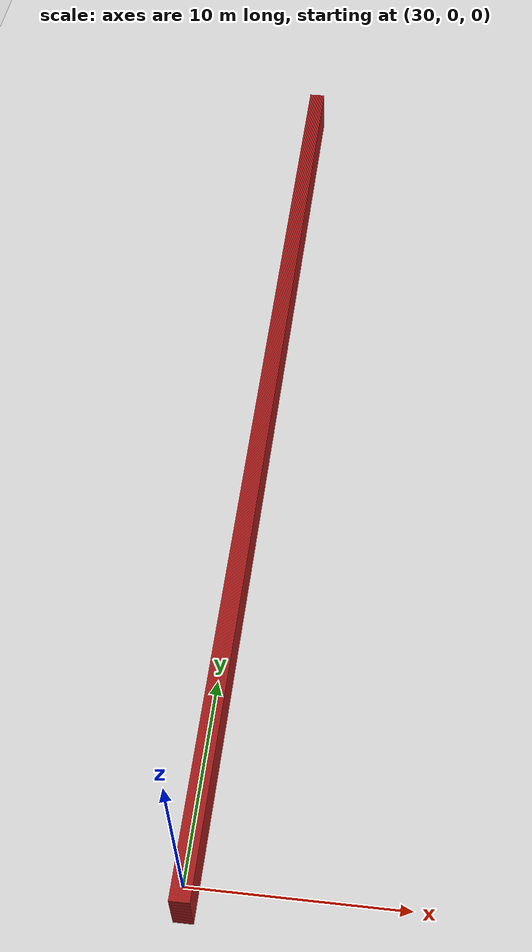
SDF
<sdf version="1.4">
 <world name="1_wall">
  <model name="ground_plane">
   <static>1</static>
   <link name="link">
    <collision name="collision">
     <geometry><plane><normal>0 0 1</normal><size>1000 1000</size></plane></geometry>
     <surface><friction><ode><mu>100</mu><mu2>50</mu2></ode></friction></surface>
    </collision>
    <visual name="visual">
     <cast_shadows>0</cast_shadows>
     <geometry><plane><normal>0 0 1</normal><size>10000 10000</size></plane></geometry>
     <material>
      <script><uri>file://media/materials/scripts/gazebo.material</uri><name>Gazebo/Grey</name></script>
     </material>
    </visual>
    <velocity_decay><linear>0</linear><angular>0</angular></velocity_decay>
   </link>
  </model>
  <model name="Wall_627">
   <static>1</static>
   <link name="Wall_627">
    <collision name="Wall_Collision_627">
     <geometry><box><size>53.65 0.05 2.5</size></box></geometry>
     <pose>0 0 1.25 0 -0 0</pose>
    </collision>
    <visual name="Wall_Visual_627">
     <pose>0 0 1.25 0 -0 0</pose>
     <geometry><box><size>53.65 0.05 2.5</size></box></geometry>
     <material>
      <script><uri>file://media/materials/scripts/gazebo.material</uri><name>Gazebo/Red</name></script>
     </material>
    </visual>
    <velocity_decay><linear>0</linear><angular>0</angular></velocity_decay>
    <pose>29.85 25.3 0 0 0 1.5707963267948966</pose>
   </link>
  </model>
  <model name="Wall_628">
   <static>1</static>
   <link name="Wall_628">
    <collision name="Wall_Collision_628">
     <geometry><box><size>53.65 0.05 2.5</size></box></geometry>
     <pose>0 0 1.25 0 -0 0</pose>
    </collision>
    <visual name="Wall_Visual_628">
     <pose>0 0 1.25 0 -0 0</pose>
     <geometry><box><size>53.65 0.05 2.5</size></box></geometry>
     <material>
      <script><uri>file://media/materials/scripts/gazebo.material</uri><name>Gazebo/Red</name></script>
     </material>
    </visual>
    <velocity_decay><linear>0</linear><angular>0</angular></velocity_decay>
    <pose>29.9 25.3 0 0 0 1.5707963267948966</pose>
   </link>
  </model>
  <model name="Wall_629">
   <static>1</static>
   <link name="Wall_629">
    <collision name="Wall_Collision_629">
     <geometry><box><size>53.65 0.05 2.5</size></box></geometry>
     <pose>0 0 1.25 0 -0 0</pose>
    </collision>
    <visual name="Wall_Visual_629">
     <pose>0 0 1.25 0 -0 0</pose>
     <geometry><box><size>53.65 0.05 2.5</size></box></geometry>
     <material>
      <script><uri>file://media/materials/scripts/gazebo.material</uri><name>Gazebo/Red</name></script>
     </material>
    </visual>
    <velocity_decay><linear>0</linear><angular>0</angular></velocity_decay>
    <pose>29.95 25.3 0 0 0 1.5707963267948966</pose>
   </link>
  </model>
  <model name="Wall_630">
   <static>1</static>
   <link name="Wall_630">
    <collision name="Wall_Collision_630">
     <geometry><box><size>53.65 0.05 2.5</size></box></geometry>
     <pose>0 0 1.25 0 -0 0</pose>
    </collision>
    <visual name="Wall_Visual_630">
     <pose>0 0 1.25 0 -0 0</pose>
     <geometry><box><size>53.65 0.05 2.5</size></box></geometry>
     <material>
      <script><uri>file://media/materials/scripts/gazebo.material</uri><name>Gazebo/Red</name></script>
     </material>
    </visual>
    <velocity_decay><linear>0</linear><angular>0</angular></velocity_decay>
    <pose>30.0 25.3 0 0 0 1.5707963267948966</pose>
   </link>
  </model>
  <model name="Wall_631">
   <static>1</static>
   <link name="Wall_631">
    <collision name="Wall_Collision_631">
     <geometry><box><size>53.65 0.05 2.5</size></box></geometry>
     <pose>0 0 1.25 0 -0 0</pose>
    </collision>
    <visual name="Wall_Visual_631">
     <pose>0 0 1.25 0 -0 0</pose>
     <geometry><box><size>53.65 0.05 2.5</size></box></geometry>
     <material>
      <script><uri>file://media/materials/scripts/gazebo.material</uri><name>Gazebo/Red</name></script>
     </material>
    </visual>
    <velocity_decay><linear>0</linear><angular>0</angular></velocity_decay>
    <pose>30.05 25.3 0 0 0 1.5707963267948966</pose>
   </link>
  </model>
  <model name="Wall_632">
   <static>1</static>
   <link name="Wall_632">
    <collision name="Wall_Collision_632">
     <geometry><box><size>53.65 0.05 2.5</size></box></geometry>
     <pose>0 0 1.25 0 -0 0</pose>
    </collision>
    <visual name="Wall_Visual_632">
     <pose>0 0 1.25 0 -0 0</pose>
     <geometry><box><size>53.65 0.05 2.5</size></box></geometry>
     <material>
      <script><uri>file://media/materials/scripts/gazebo.material</uri><name>Gazebo/Red</name></script>
     </material>
    </visual>
    <velocity_decay><linear>0</linear><angular>0</angular></velocity_decay>
    <pose>30.1 25.3 0 0 0 1.5707963267948966</pose>
   </link>
  </model>
  <model name="Wall_633">
   <static>1</static>
   <link name="Wall_633">
    <collision name="Wall_Collision_633">
     <geometry><box><size>53.65 0.05 2.5</size></box></geometry>
     <pose>0 0 1.25 0 -0 0</pose>
    </collision>
    <visual name="Wall_Visual_633">
     <pose>0 0 1.25 0 -0 0</pose>
     <geometry><box><size>53.65 0.05 2.5</size></box></geometry>
     <material>
      <script><uri>file://media/materials/scripts/gazebo.material</uri><name>Gazebo/Red</name></script>
     </material>
    </visual>
    <velocity_decay><linear>0</linear><angular>0</angular></velocity_decay>
    <pose>30.15 25.3 0 0 0 1.5707963267948966</pose>
   </link>
  </model>
  <model name="Wall_634">
   <static>1</static>
   <link name="Wall_634">
    <collision name="Wall_Collision_634">
     <geometry><box><size>53.65 0.05 2.5</size></box></geometry>
     <pose>0 0 1.25 0 -0 0</pose>
    </collision>
    <visual name="Wall_Visual_634">
     <pose>0 0 1.25 0 -0 0</pose>
     <geometry><box><size>53.65 0.05 2.5</size></box></geometry>
     <material>
      <script><uri>file://media/materials/scripts/gazebo.material</uri><name>Gazebo/Red</name></script>
     </material>
    </visual>
    <velocity_decay><linear>0</linear><angular>0</angular></velocity_decay>
    <pose>30.2 25.3 0 0 0 1.5707963267948966</pose>
   </link>
  </model>
  <model name="Wall_635">
   <static>1</static>
   <link name="Wall_635">
    <collision name="Wall_Collision_635">
     <geometry><box><size>53.65 0.05 2.5</size></box></geometry>
     <pose>0 0 1.25 0 -0 0</pose>
    </collision>
    <visual name="Wall_Visual_635">
     <pose>0 0 1.25 0 -0 0</pose>
     <geometry><box><size>53.65 0.05 2.5</size></box></geometry>
     <material>
      <script><uri>file://media/materials/scripts/gazebo.material</uri><name>Gazebo/Red</name></script>
     </material>
    </visual>
    <velocity_decay><linear>0</linear><angular>0</angular></velocity_decay>
    <pose>30.25 25.3 0 0 0 1.5707963267948966</pose>
   </link>
  </model>
  <model name="Wall_636">
   <static>1</static>
   <link name="Wall_636">
    <collision name="Wall_Collision_636">
     <geometry><box><size>53.65 0.05 2.5</size></box></geometry>
     <pose>0 0 1.25 0 -0 0</pose>
    </collision>
    <visual name="Wall_Visual_636">
     <pose>0 0 1.25 0 -0 0</pose>
     <geometry><box><size>53.65 0.05 2.5</size></box></geometry>
     <material>
      <script><uri>file://media/materials/scripts/gazebo.material</uri><name>Gazebo/Red</name></script>
     </material>
    </visual>
    <velocity_decay><linear>0</linear><angular>0</angular></velocity_decay>
    <pose>30.3 25.3 0 0 0 1.5707963267948966</pose>
   </link>
  </model>
  <model name="Wall_637">
   <static>1</static>
   <link name="Wall_637">
    <collision name="Wall_Collision_637">
     <geometry><box><size>53.65 0.05 2.5</size></box></geometry>
     <pose>0 0 1.25 0 -0 0</pose>
    </collision>
    <visual name="Wall_Visual_637">
     <pose>0 0 1.25 0 -0 0</pose>
     <geometry><box><size>53.65 0.05 2.5</size></box></geometry>
     <material>
      <script><uri>file://media/materials/scripts/gazebo.material</uri><name>Gazebo/Red</name></script>
     </material>
    </visual>
    <velocity_decay><linear>0</linear><angular>0</angular></velocity_decay>
    <pose>30.35 25.3 0 0 0 1.5707963267948966</pose>
   </link>
  </model>
  <model name="Wall_638">
   <static>1</static>
   <link name="Wall_638">
    <collision name="Wall_Collision_638">
     <geometry><box><size>53.65 0.05 2.5</size></box></geometry>
     <pose>0 0 1.25 0 -0 0</pose>
    </collision>
    <visual name="Wall_Visual_638">
     <pose>0 0 1.25 0 -0 0</pose>
     <geometry><box><size>53.65 0.05 2.5</size></box></geometry>
     <material>
      <script><uri>file://media/materials/scripts/gazebo.material</uri><name>Gazebo/Red</name></script>
     </material>
    </visual>
    <velocity_decay><linear>0</linear><angular>0</angular></velocity_decay>
    <pose>30.4 25.3 0 0 0 1.5707963267948966</pose>
   </link>
  </model>
  <model name="Wall_639">
   <static>1</static>
   <link name="Wall_639">
    <collision name="Wall_Collision_639">
     <geometry><box><size>53.65 0.05 2.5</size></box></geometry>
     <pose>0 0 1.25 0 -0 0</pose>
    </collision>
    <visual name="Wall_Visual_639">
     <pose>0 0 1.25 0 -0 0</pose>
     <geometry><box><size>53.65 0.05 2.5</size></box></geometry>
     <material>
      <script><uri>file://media/materials/scripts/gazebo.material</uri><name>Gazebo/Red</name></script>
     </material>
    </visual>
    <velocity_decay><linear>0</linear><angular>0</angular></velocity_decay>
    <pose>30.45 25.3 0 0 0 1.5707963267948966</pose>
   </link>
  </model>
  <model name="Wall_640">
   <static>1</static>
   <link name="Wall_640">
    <collision name="Wall_Collision_640">
     <geometry><box><size>53.65 0.05 2.5</size></box></geometry>
     <pose>0 0 1.25 0 -0 0</pose>
    </collision>
    <visual name="Wall_Visual_640">
     <pose>0 0 1.25 0 -0 0</pose>
     <geometry><box><size>53.65 0.05 2.5</size></box></geometry>
     <material>
      <script><uri>file://media/materials/scripts/gazebo.material</uri><name>Gazebo/Red</name></script>
     </material>
    </visual>
    <velocity_decay><linear>0</linear><angular>0</angular></velocity_decay>
    <pose>30.5 25.3 0 0 0 1.5707963267948966</pose>
   </link>
  </model>
  <model name="Wall_641">
   <static>1</static>
   <link name="Wall_641">
    <collision name="Wall_Collision_641">
     <geometry><box><size>53.65 0.05 2.5</size></box></geometry>
     <pose>0 0 1.25 0 -0 0</pose>
    </collision>
    <visual name="Wall_Visual_641">
     <pose>0 0 1.25 0 -0 0</pose>
     <geometry><box><size>53.65 0.05 2.5</size></box></geometry>
     <material>
      <script><uri>file://media/materials/scripts/gazebo.material</uri><name>Gazebo/Red</name></script>
     </material>
    </visual>
    <velocity_decay><linear>0</linear><angular>0</angular></velocity_decay>
    <pose>30.55 25.3 0 0 0 1.5707963267948966</pose>
   </link>
  </model>
  <model name="Wall_642">
   <static>1</static>
   <link name="Wall_642">
    <collision name="Wall_Collision_642">
     <geometry><box><size>53.65 0.05 2.5</size></box></geometry>
     <pose>0 0 1.25 0 -0 0</pose>
    </collision>
    <visual name="Wall_Visual_642">
     <pose>0 0 1.25 0 -0 0</pose>
     <geometry><box><size>53.65 0.05 2.5</size></box></geometry>
     <material>
      <script><uri>file://media/materials/scripts/gazebo.material</uri><name>Gazebo/Red</name></script>
     </material>
    </visual>
    <velocity_decay><linear>0</linear><angular>0</angular></velocity_decay>
    <pose>30.6 25.3 0 0 0 1.5707963267948966</pose>
   </link>
  </model>
  <model name="Wall_643">
   <static>1</static>
   <link name="Wall_643">
    <collision name="Wall_Collision_643">
     <geometry><box><size>53.65 0.05 2.5</size></box></geometry>
     <pose>0 0 1.25 0 -0 0</pose>
    </collision>
    <visual name="Wall_Visual_643">
     <pose>0 0 1.25 0 -0 0</pose>
     <geometry><box><size>53.65 0.05 2.5</size></box></geometry>
     <material>
      <script><uri>file://media/materials/scripts/gazebo.material</uri><name>Gazebo/Red</name></script>
     </material>
    </visual>
    <velocity_decay><linear>0</linear><angular>0</angular></velocity_decay>
    <pose>30.65 25.3 0 0 0 1.5707963267948966</pose>
   </link>
  </model>
  <model name="Wall_644">
   <static>1</static>
   <link name="Wall_644">
    <collision name="Wall_Collision_644">
     <geometry><box><size>53.65 0.05 2.5</size></box></geometry>
     <pose>0 0 1.25 0 -0 0</pose>
    </collision>
    <visual name="Wall_Visual_644">
     <pose>0 0 1.25 0 -0 0</pose>
     <geometry><box><size>53.65 0.05 2.5</size></box></geometry>
     <material>
      <script><uri>file://media/materials/scripts/gazebo.material</uri><name>Gazebo/Red</name></script>
     </material>
    </visual>
    <velocity_decay><linear>0</linear><angular>0</angular></velocity_decay>
    <pose>30.7 25.3 0 0 0 1.5707963267948966</pose>
   </link>
  </model>
 </world>
</sdf>
